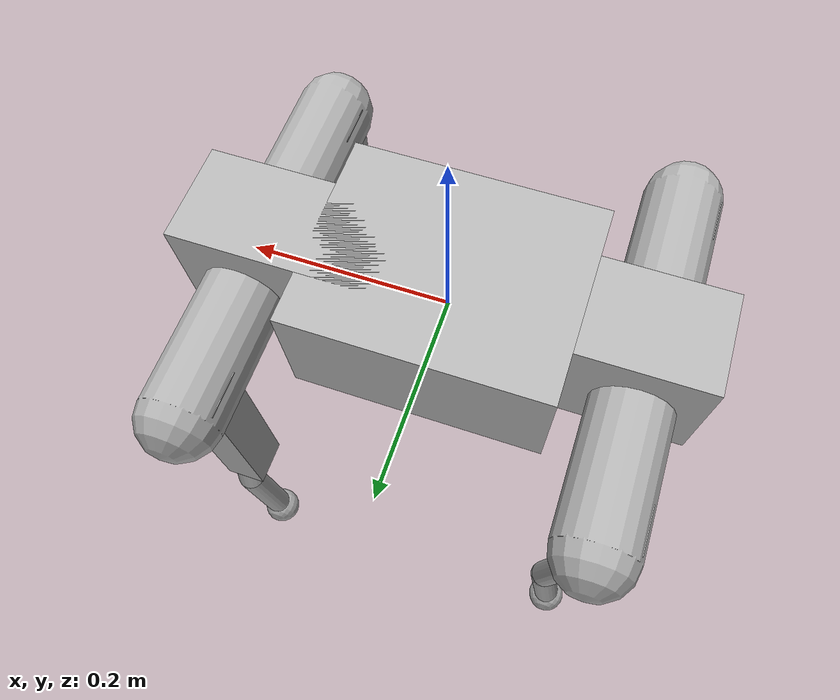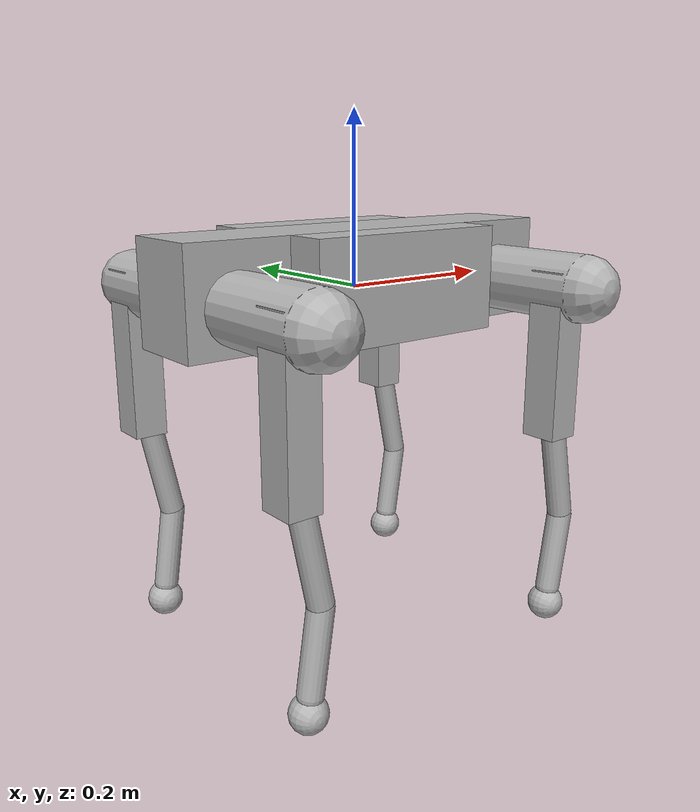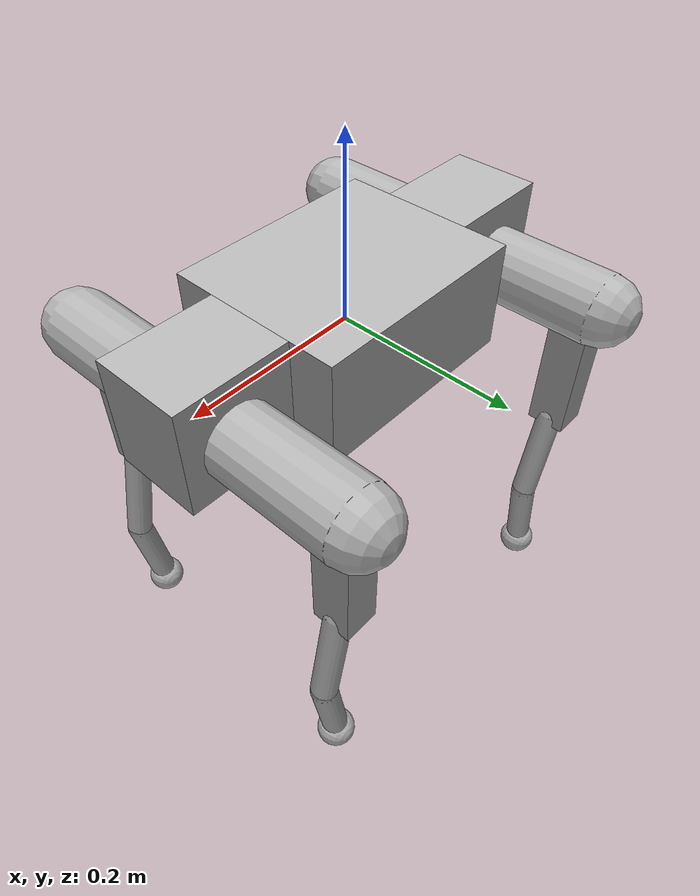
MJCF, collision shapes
<?xml version='1.0' encoding='utf-8'?>
<mujoco model="syncai_g23">
  <compiler angle="radian" meshdir="assets" autolimits="true" balanceinertia="false" />
  <option timestep="0.002" gravity="0 0 -9.81" />
  <default>
    <joint damping="0" armature="0" />
    <default class="visual">
      <geom type="mesh" contype="0" conaffinity="0" group="2" density="0" />
    </default>
    <default class="collision">
      <geom contype="1" conaffinity="1" group="3" rgba="0.7 0.7 0.7 0.35" />
    </default>
  </default>
  <asset>
    <mesh name="mesh_0_jeff_2_3_body_low_res" file="jeff_2_3_body_low_res.stl" />
    <mesh name="mesh_1_hip" file="hip.STL" />
    <mesh name="mesh_2_thigh" file="thigh.STL" />
    <mesh name="mesh_3_shank" file="shank.STL" />
    <mesh name="mesh_4_hip" file="hip.STL" scale="1 -1 1" />
    <mesh name="mesh_5_thigh" file="thigh.STL" scale="1 -1 1" />
    <mesh name="mesh_6_hip" file="hip.STL" scale="-1 1 1" />
    <mesh name="mesh_7_hip" file="hip.STL" scale="-1 -1 1" />
  </asset>
  <worldbody>
    <body name="TORSO">
      <freejoint name="floating_base" />
      <site name="imu_site" pos="0 0 0" size="0.005" rgba="1 0 0 1" />
      <inertial mass="9.368" pos="0.023640945 0.001529477 0.033866753" fullinertia="0.058025245 0.142509325 0.150322311 0 -0.014586129 0" />
      <geom name="torso_visual" class="visual" mesh="mesh_0_jeff_2_3_body_low_res" quat="0.5003981634 0.4999998415 0.4996018366 0.4999998415" />
      <geom name="torso_collision" class="collision" type="box" size="0.25 0.05 0.06" pos="0 0 0.01" />
      <geom name="torso_collision1" class="collision" type="box" size="0.125 0.1 0.06" pos="0 0 0.01" />
      <body name="FL_HIP" pos="0.1895 0.062 0">
        <joint name="FL_HipX_joint" type="hinge" axis="-1 0 0" range="-0.523 0.523" />
        <inertial mass="0.55" pos="-0.00601 -0.0066532 0.00034295" fullinertia="0.0003949 0.0004028 0.0004472 0 0 0" />
        <geom name="FL_hip_visual" class="visual" mesh="mesh_1_hip" />
        <geom name="FL_hip_collision" class="collision" type="capsule" size="0.04 0.075" pos="0 0.05 0" quat="0.7071067836 0.7071067788 0 0" />
        <body name="FL_THIGH" pos="0 0.09735 0">
          <joint name="FL_HipY_joint" type="hinge" axis="0 -1 0" range="-2.67 0.314" />
          <inertial mass="0.86" pos="-0.0039245 -0.014632 -0.025146" fullinertia="0.005736 0.00496 0.001436 0 0 0" />
          <geom name="FL_thigh_visual" class="visual" mesh="mesh_2_thigh" />
          <geom name="FL_thigh_collision" class="collision" type="box" size="0.02 0.0225 0.1" pos="-0.015 0 -0.08" />
          <body name="FL_SHANK" pos="0 0 -0.2">
            <joint name="FL_Knee_joint" type="hinge" axis="0 -1 0" range="0.524 2.792" />
            <inertial mass="0.153" pos="0.0064794 -1.4535e-06 -0.12157" fullinertia="0.00089039 0.00090672 3.1266e-05 0 0 0" />
            <geom name="FL_shank_visual" class="visual" mesh="mesh_3_shank" />
            <geom name="FL_shank_collision" class="collision" type="capsule" size="0.015 0.06" pos="0.005 0 -0.03" quat="0.9950041653 0 -0.09983341665 0" />
            <geom name="FL_shank_collision1" class="collision" type="capsule" size="0.015 0.05" pos="0.01 0 -0.14" quat="0.9971888181 0 0.07492970727 0" />
            <body name="FL_FOOT" pos="0 0 -0.21012">
              <inertial mass="0.02" pos="0 0 0" diaginertia="3.872e-06 3.872e-06 3.872e-06" />
              <geom name="FL_foot_collision" class="collision" type="sphere" size="0.022" quat="0.7071067812 0.7071067812 0 0" />
            </body>
          </body>
        </body>
      </body>
      <body name="FR_HIP" pos="0.1895 -0.062 0">
        <joint name="FR_HipX_joint" type="hinge" axis="-1 0 0" range="-0.523 0.523" />
        <inertial mass="0.55" pos="-0.010579 0.011358 0.00048546" fullinertia="0.0004472 0.0004028 0.0003949 0 0 0" />
        <geom name="FR_hip_visual" class="visual" mesh="mesh_4_hip" />
        <geom name="FR_hip_collision" class="collision" type="capsule" size="0.04 0.075" pos="0 -0.05 0" quat="0.7071067836 0.7071067788 0 0" />
        <body name="FR_THIGH" pos="0 -0.09735 0">
          <joint name="FR_HipY_joint" type="hinge" axis="0 -1 0" range="-2.67 0.314" />
          <inertial mass="0.86" pos="-0.0039245 0.014632 -0.025146" fullinertia="0.005736 0.00496 0.001436 0 0 0" />
          <geom name="FR_thigh_visual" class="visual" mesh="mesh_5_thigh" />
          <geom name="FR_thigh_collision" class="collision" type="box" size="0.02 0.0225 0.1" pos="-0.015 0 -0.08" />
          <body name="FR_SHANK" pos="0 0 -0.2">
            <joint name="FR_Knee_joint" type="hinge" axis="0 -1 0" range="0.524 2.792" />
            <inertial mass="0.153" pos="0.0064794 -1.4552e-06 -0.12157" fullinertia="0.00089039 0.00090672 3.1266e-05 0 0 0" />
            <geom name="FR_shank_visual" class="visual" mesh="mesh_3_shank" />
            <geom name="FR_shank_collision" class="collision" type="capsule" size="0.015 0.06" pos="0.005 0 -0.03" quat="0.9950041653 0 -0.09983341665 0" />
            <geom name="FR_shank_collision1" class="collision" type="capsule" size="0.015 0.05" pos="0.01 0 -0.14" quat="0.9971888181 0 0.07492970727 0" />
            <body name="FR_FOOT" pos="0 0 -0.21012">
              <inertial mass="0.02" pos="0 0 0" diaginertia="3.872e-06 3.872e-06 3.872e-06" />
              <geom name="FR_foot_collision" class="collision" type="sphere" size="0.022" quat="0.7071067812 0.7071067812 0 0" />
            </body>
          </body>
        </body>
      </body>
      <body name="HL_HIP" pos="-0.1895 0.062 0">
        <joint name="HL_HipX_joint" type="hinge" axis="-1 0 0" range="-0.523 0.523" />
        <inertial mass="0.55" pos="0.010905 -0.012636 0.001051" fullinertia="0.0003949 0.0004028 0.0004472 0 0 0" />
        <geom name="HL_hip_visual" class="visual" mesh="mesh_6_hip" />
        <geom name="HL_hip_collision" class="collision" type="capsule" size="0.04 0.075" pos="0 0.05 0" quat="0.7071067836 0.7071067788 0 0" />
        <body name="HL_THIGH" pos="0 0.09735 0">
          <joint name="HL_HipY_joint" type="hinge" axis="0 -1 0" range="-2.67 0.314" />
          <inertial mass="0.86" pos="-0.0039245 -0.014632 -0.025146" fullinertia="0.005736 0.00496 0.001436 0 0 0" />
          <geom name="HL_thigh_visual" class="visual" mesh="mesh_2_thigh" />
          <geom name="HL_thigh_collision" class="collision" type="box" size="0.02 0.0225 0.1" pos="-0.015 0 -0.08" />
          <body name="HL_SHANK" pos="0 0 -0.2">
            <joint name="HL_Knee_joint" type="hinge" axis="0 -1 0" range="0.524 2.792" />
            <inertial mass="0.153" pos="0.0064794 -1.4558e-06 -0.12157" fullinertia="0.00089039 0.00090672 3.1266e-05 0 0 0" />
            <geom name="HL_shank_visual" class="visual" mesh="mesh_3_shank" />
            <geom name="HL_shank_collision" class="collision" type="capsule" size="0.015 0.06" pos="0.005 0 -0.03" quat="0.9950041653 0 -0.09983341665 0" />
            <geom name="HL_shank_collision1" class="collision" type="capsule" size="0.015 0.05" pos="0.01 0 -0.14" quat="0.9971888181 0 0.07492970727 0" />
            <body name="HL_FOOT" pos="0 0 -0.21012">
              <inertial mass="0.02" pos="0 0 0" diaginertia="3.872e-06 3.872e-06 3.872e-06" />
              <geom name="HL_foot_collision" class="collision" type="sphere" size="0.022" quat="0.7071067812 0.7071067812 0 0" />
            </body>
          </body>
        </body>
      </body>
      <body name="HR_HIP" pos="-0.1895 -0.062 0">
        <joint name="HR_HipX_joint" type="hinge" axis="-1 0 0" range="-0.523 0.523" />
        <inertial mass="0.55" pos="0.010354 0.011423 0.00049498" fullinertia="0.0004472 0.0004028 0.0003949 0 0 0" />
        <geom name="HR_hip_visual" class="visual" mesh="mesh_7_hip" />
        <geom name="HR_hip_collision" class="collision" type="capsule" size="0.04 0.075" pos="0 -0.05 0" quat="0.7071067836 0.7071067788 0 0" />
        <body name="HR_THIGH" pos="0 -0.09735 0">
          <joint name="HR_HipY_joint" type="hinge" axis="0 -1 0" range="-2.67 0.314" />
          <inertial mass="0.86" pos="-0.0039245 0.014632 -0.025146" fullinertia="0.005736 0.00496 0.001436 0 0 0" />
          <geom name="HR_thigh_visual" class="visual" mesh="mesh_5_thigh" />
          <geom name="HR_thigh_collision" class="collision" type="box" size="0.02 0.0225 0.1" pos="-0.015 0 -0.08" />
          <body name="HR_SHANK" pos="0 0 -0.2">
            <joint name="HR_Knee_joint" type="hinge" axis="0 -1 0" range="0.524 2.792" />
            <inertial mass="0.153" pos="0.0064794 -1.4529e-06 -0.12157" fullinertia="0.00089039 0.00090672 3.1266e-05 0 0 0" />
            <geom name="HR_shank_visual" class="visual" mesh="mesh_3_shank" />
            <geom name="HR_shank_collision" class="collision" type="capsule" size="0.015 0.06" pos="0.005 0 -0.03" quat="0.9950041653 0 -0.09983341665 0" />
            <geom name="HR_shank_collision1" class="collision" type="capsule" size="0.015 0.05" pos="0.01 0 -0.14" quat="0.9971888181 0 0.07492970727 0" />
            <body name="HR_FOOT" pos="0 0 -0.21012">
              <inertial mass="0.02" pos="0 0 0" diaginertia="3.872e-06 3.872e-06 3.872e-06" />
              <geom name="HR_foot_collision" class="collision" type="sphere" size="0.022" quat="0.7071067812 0.7071067812 0 0" />
            </body>
          </body>
        </body>
      </body>
    </body>
  </worldbody>
  <contact>
    <!-- Mirrored hip capsules overlap slightly in the nominal stance.  They are
         adjacent links across the torso, not meaningful self-contact pairs. -->
    <exclude body1="FL_HIP" body2="FR_HIP" />
    <exclude body1="HL_HIP" body2="HR_HIP" />
    <exclude body1="TORSO" body2="FL_HIP" />
    <exclude body1="FL_HIP" body2="FL_THIGH" />
    <exclude body1="FL_THIGH" body2="FL_SHANK" />
    <exclude body1="FL_SHANK" body2="FL_FOOT" />
    <exclude body1="TORSO" body2="FR_HIP" />
    <exclude body1="FR_HIP" body2="FR_THIGH" />
    <exclude body1="FR_THIGH" body2="FR_SHANK" />
    <exclude body1="FR_SHANK" body2="FR_FOOT" />
    <exclude body1="TORSO" body2="HL_HIP" />
    <exclude body1="HL_HIP" body2="HL_THIGH" />
    <exclude body1="HL_THIGH" body2="HL_SHANK" />
    <exclude body1="HL_SHANK" body2="HL_FOOT" />
    <exclude body1="TORSO" body2="HR_HIP" />
    <exclude body1="HR_HIP" body2="HR_THIGH" />
    <exclude body1="HR_THIGH" body2="HR_SHANK" />
    <exclude body1="HR_SHANK" body2="HR_FOOT" />
  </contact>

  <!-- mjlab's getup observations resolve these sensors by name. -->
  <sensor>
    <velocimeter name="imu_lin_vel" site="imu_site" />
    <accelerometer name="imu_lin_acc" site="imu_site" />
    <gyro name="imu_ang_vel" site="imu_site" />
  </sensor>
</mujoco>
